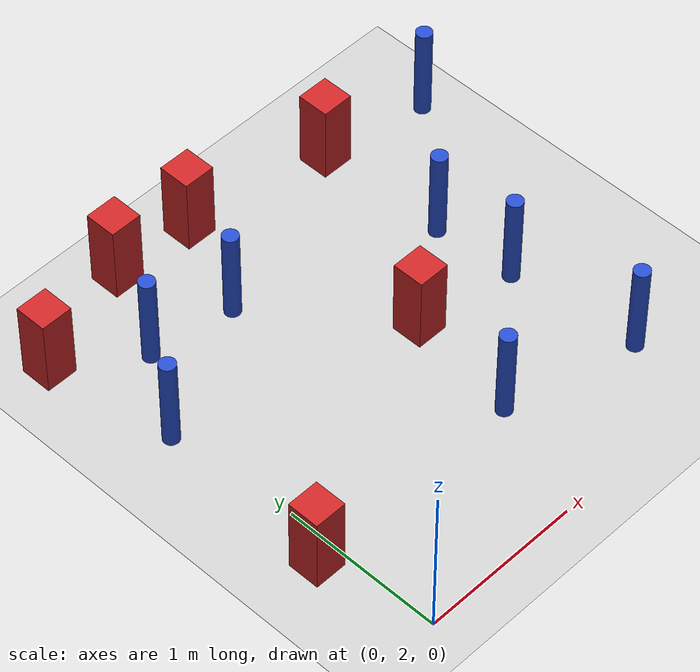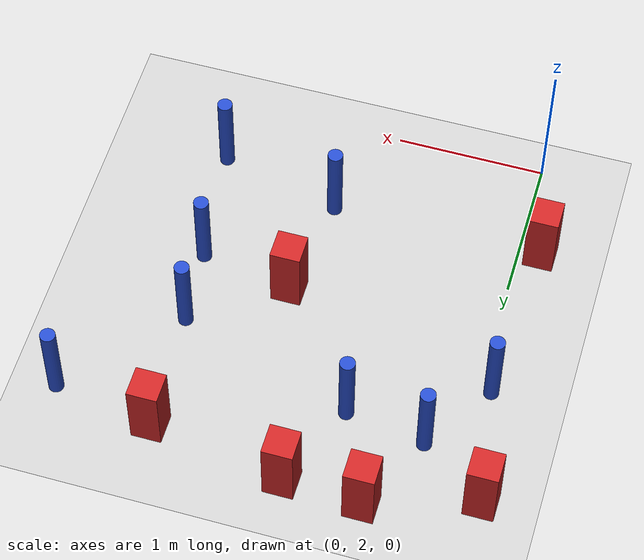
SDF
<sdf version="1.6">
 <world name="default">
  <model name="ground_plane">
   <static>1</static>
   <link name="link">
    <collision name="collision">
     <geometry><plane><normal>0 0 1</normal><size>100 100</size></plane></geometry>
     <surface><friction><ode><mu>100</mu><mu2>50</mu2></ode></friction></surface>
    </collision>
    <visual name="visual">
     <cast_shadows>0</cast_shadows>
     <geometry><plane><normal>0 0 1</normal><size>100 100</size></plane></geometry>
     <material>
      <ambient>1.0 1.0 1.0 1.0</ambient>
      <diffuse>0.8 0.8 0.8 1.0</diffuse>
      <specular>0.01 0.01 0.01 1.000000</specular>
     </material>
    </visual>
   </link>
  </model>
  <model name="pole_obstacle7">
   <static>true</static>
   <pose>1.96230142851 3.81808928893 -2.66029137441e-07 -5.69430205637e-07 6.84129966555e-07 -8.6834937083e-08</pose>
   <link name="link">
    <pose>0 0 0.3 0 -0 0</pose>
    <inertial>
     <mass>1</mass>
     <inertia><ixx>0.145833</ixx><ixy>0</ixy><ixz>0</ixz><iyy>0.145833</iyy><iyz>0</iyz><izz>0.125</izz></inertia>
    </inertial>
    <collision name="collision">
     <geometry><cylinder><radius>0.05</radius><length>.6</length></cylinder></geometry>
    </collision>
    <visual name="visual">
     <geometry><cylinder><radius>0.05</radius><length>.6</length></cylinder></geometry>
     <material>
      <script><name>Gazebo/Blue</name><uri>file://media/materials/scripts/gazebo.material</uri></script>
     </material>
    </visual>
   </link>
  </model>
  <model name="square_post_obstacle28">
   <static>true</static>
   <pose>1.92408122065 4.64367417338 -7.80171244635e-07 7.17449752808e-06 -5.6639232126e-07 2.2715510512e-05</pose>
   <link name="link">
    <pose>0 0 0.25 0 -0 0</pose>
    <inertial>
     <mass>100</mass>
     <inertia>
      <ixx>0.166667</ixx>
      <ixy>0</ixy>
      <ixz>0</ixz>
      <iyy>0.166667</iyy>
      <iyz>0</iyz>
      <izz>0.166667</izz>
     </inertia>
    </inertial>
    <collision name="collision"><geometry><box><size>.2 .2 .5</size></box></geometry></collision>
    <visual name="visual">
     <geometry><box><size>.2 .2 .5</size></box></geometry>
     <material>
      <script><name>Gazebo/Red</name><uri>file://media/materials/scripts/gazebo.material</uri></script>
     </material>
    </visual>
   </link>
  </model>
  <model name="pole_obstacle43">
   <static>true</static>
   <pose>-0.0823583343224 3.80414017 -2.66029137441e-07 -5.6943020563e-07 6.84129966563e-07 -8.68349370787e-08</pose>
   <link name="link">
    <pose>0 0 0.3 0 -0 0</pose>
    <inertial>
     <mass>1</mass>
     <inertia><ixx>0.145833</ixx><ixy>0</ixy><ixz>0</ixz><iyy>0.145833</iyy><iyz>0</iyz><izz>0.125</izz></inertia>
    </inertial>
    <collision name="collision">
     <geometry><cylinder><radius>0.05</radius><length>.6</length></cylinder></geometry>
    </collision>
    <visual name="visual">
     <geometry><cylinder><radius>0.05</radius><length>.6</length></cylinder></geometry>
     <material>
      <script><name>Gazebo/Blue</name><uri>file://media/materials/scripts/gazebo.material</uri></script>
     </material>
    </visual>
   </link>
  </model>
  <model name="pole_obstacle57">
   <static>true</static>
   <pose>1.27595280279 2.68957354085 -2.66029137441e-07 -5.69430205634e-07 6.84129966558e-07 -8.68349370806e-08</pose>
   <link name="link">
    <pose>0 0 0.3 0 -0 0</pose>
    <inertial>
     <mass>1</mass>
     <inertia><ixx>0.145833</ixx><ixy>0</ixy><ixz>0</ixz><iyy>0.145833</iyy><iyz>0</iyz><izz>0.125</izz></inertia>
    </inertial>
    <collision name="collision">
     <geometry><cylinder><radius>0.05</radius><length>.6</length></cylinder></geometry>
    </collision>
    <visual name="visual">
     <geometry><cylinder><radius>0.05</radius><length>.6</length></cylinder></geometry>
     <material>
      <script><name>Gazebo/Blue</name><uri>file://media/materials/scripts/gazebo.material</uri></script>
     </material>
    </visual>
   </link>
  </model>
  <model name="square_post_obstacle45">
   <static>true</static>
   <pose>1.01305739748 4.79835674874 -7.80171244635e-07 7.17449752808e-06 -5.6639232126e-07 2.2715510512e-05</pose>
   <link name="link">
    <pose>0 0 0.25 0 -0 0</pose>
    <inertial>
     <mass>100</mass>
     <inertia>
      <ixx>0.166667</ixx>
      <ixy>0</ixy>
      <ixz>0</ixz>
      <iyy>0.166667</iyy>
      <iyz>0</iyz>
      <izz>0.166667</izz>
     </inertia>
    </inertial>
    <collision name="collision"><geometry><box><size>.2 .2 .5</size></box></geometry></collision>
    <visual name="visual">
     <geometry><box><size>.2 .2 .5</size></box></geometry>
     <material>
      <script><name>Gazebo/Red</name><uri>file://media/materials/scripts/gazebo.material</uri></script>
     </material>
    </visual>
   </link>
  </model>
  <model name="square_post_obstacle53">
   <static>true</static>
   <pose>-0.142103559039 2.67700988703 -7.80171244635e-07 7.17449752808e-06 -5.6639232126e-07 2.2715510512e-05</pose>
   <link name="link">
    <pose>0 0 0.25 0 -0 0</pose>
    <inertial>
     <mass>100</mass>
     <inertia>
      <ixx>0.166667</ixx>
      <ixy>0</ixy>
      <ixz>0</ixz>
      <iyy>0.166667</iyy>
      <iyz>0</iyz>
      <izz>0.166667</izz>
     </inertia>
    </inertial>
    <collision name="collision"><geometry><box><size>.2 .2 .5</size></box></geometry></collision>
    <visual name="visual">
     <geometry><box><size>.2 .2 .5</size></box></geometry>
     <material>
      <script><name>Gazebo/Red</name><uri>file://media/materials/scripts/gazebo.material</uri></script>
     </material>
    </visual>
   </link>
  </model>
  <model name="pole_obstacle83">
   <static>true</static>
   <pose>2.59869494379 4.5320456758 -2.66029137441e-07 -5.69430205635e-07 6.84129966557e-07 -8.68349370832e-08</pose>
   <link name="link">
    <pose>0 0 0.3 0 -0 0</pose>
    <inertial>
     <mass>1</mass>
     <inertia><ixx>0.145833</ixx><ixy>0</ixy><ixz>0</ixz><iyy>0.145833</iyy><iyz>0</iyz><izz>0.125</izz></inertia>
    </inertial>
    <collision name="collision">
     <geometry><cylinder><radius>0.05</radius><length>.6</length></cylinder></geometry>
    </collision>
    <visual name="visual">
     <geometry><cylinder><radius>0.05</radius><length>.6</length></cylinder></geometry>
     <material>
      <script><name>Gazebo/Blue</name><uri>file://media/materials/scripts/gazebo.material</uri></script>
     </material>
    </visual>
   </link>
  </model>
  <model name="pole_obstacle117">
   <static>true</static>
   <pose>2.09569332115 2.49116753536 -2.66029137441e-07 -5.69430205643e-07 6.84129966548e-07 -8.68349370903e-08</pose>
   <link name="link">
    <pose>0 0 0.3 0 -0 0</pose>
    <inertial>
     <mass>1</mass>
     <inertia><ixx>0.145833</ixx><ixy>0</ixy><ixz>0</ixz><iyy>0.145833</iyy><iyz>0</iyz><izz>0.125</izz></inertia>
    </inertial>
    <collision name="collision">
     <geometry><cylinder><radius>0.05</radius><length>.6</length></cylinder></geometry>
    </collision>
    <visual name="visual">
     <geometry><cylinder><radius>0.05</radius><length>.6</length></cylinder></geometry>
     <material>
      <script><name>Gazebo/Blue</name><uri>file://media/materials/scripts/gazebo.material</uri></script>
     </material>
    </visual>
   </link>
  </model>
  <model name="pole_obstacle165">
   <static>true</static>
   <pose>0.233436097265 4.28815782311 -2.66029137441e-07 -5.69430205628e-07 6.84129966565e-07 -8.68349370765e-08</pose>
   <link name="link">
    <pose>0 0 0.3 0 -0 0</pose>
    <inertial>
     <mass>1</mass>
     <inertia><ixx>0.145833</ixx><ixy>0</ixy><ixz>0</ixz><iyy>0.145833</iyy><iyz>0</iyz><izz>0.125</izz></inertia>
    </inertial>
    <collision name="collision">
     <geometry><cylinder><radius>0.05</radius><length>.6</length></cylinder></geometry>
    </collision>
    <visual name="visual">
     <geometry><cylinder><radius>0.05</radius><length>.6</length></cylinder></geometry>
     <material>
      <script><name>Gazebo/Blue</name><uri>file://media/materials/scripts/gazebo.material</uri></script>
     </material>
    </visual>
   </link>
  </model>
  <model name="square_post_obstacle169">
   <static>true</static>
   <pose>1.38005438468 3.40444852442 -7.80171244635e-07 7.17449752808e-06 -5.6639232126e-07 2.2715510512e-05</pose>
   <link name="link">
    <pose>0 0 0.25 0 -0 0</pose>
    <inertial>
     <mass>100</mass>
     <inertia>
      <ixx>0.166667</ixx>
      <ixy>0</ixy>
      <ixz>0</ixz>
      <iyy>0.166667</iyy>
      <iyz>0</iyz>
      <izz>0.166667</izz>
     </inertia>
    </inertial>
    <collision name="collision"><geometry><box><size>.2 .2 .5</size></box></geometry></collision>
    <visual name="visual">
     <geometry><box><size>.2 .2 .5</size></box></geometry>
     <material>
      <script><name>Gazebo/Red</name><uri>file://media/materials/scripts/gazebo.material</uri></script>
     </material>
    </visual>
   </link>
  </model>
  <model name="pole_obstacle170">
   <static>true</static>
   <pose>0.765131276808 4.20770242626 -2.66029137441e-07 -5.69430205631e-07 6.84129966561e-07 -8.68349370784e-08</pose>
   <link name="link">
    <pose>0 0 0.3 0 -0 0</pose>
    <inertial>
     <mass>1</mass>
     <inertia><ixx>0.145833</ixx><ixy>0</ixy><ixz>0</ixz><iyy>0.145833</iyy><iyz>0</iyz><izz>0.125</izz></inertia>
    </inertial>
    <collision name="collision">
     <geometry><cylinder><radius>0.05</radius><length>.6</length></cylinder></geometry>
    </collision>
    <visual name="visual">
     <geometry><cylinder><radius>0.05</radius><length>.6</length></cylinder></geometry>
     <material>
      <script><name>Gazebo/Blue</name><uri>file://media/materials/scripts/gazebo.material</uri></script>
     </material>
    </visual>
   </link>
  </model>
  <model name="square_post_obstacle179">
   <static>true</static>
   <pose>-0.212685796957 4.60070642719 -7.80171244635e-07 7.17449752808e-06 -5.6639232126e-07 2.2715510512e-05</pose>
   <link name="link">
    <pose>0 0 0.25 0 -0 0</pose>
    <inertial>
     <mass>100</mass>
     <inertia>
      <ixx>0.166667</ixx>
      <ixy>0</ixy>
      <ixz>0</ixz>
      <iyy>0.166667</iyy>
      <iyz>0</iyz>
      <izz>0.166667</izz>
     </inertia>
    </inertial>
    <collision name="collision"><geometry><box><size>.2 .2 .5</size></box></geometry></collision>
    <visual name="visual">
     <geometry><box><size>.2 .2 .5</size></box></geometry>
     <material>
      <script><name>Gazebo/Red</name><uri>file://media/materials/scripts/gazebo.material</uri></script>
     </material>
    </visual>
   </link>
  </model>
  <model name="pole_obstacle192">
   <static>true</static>
   <pose>2.0004956605 3.30228815203 -2.66029137441e-07 -5.69430205647e-07 6.84129966544e-07 -8.68349370923e-08</pose>
   <link name="link">
    <pose>0 0 0.3 0 -0 0</pose>
    <inertial>
     <mass>1</mass>
     <inertia><ixx>0.145833</ixx><ixy>0</ixy><ixz>0</ixz><iyy>0.145833</iyy><iyz>0</iyz><izz>0.125</izz></inertia>
    </inertial>
    <collision name="collision">
     <geometry><cylinder><radius>0.05</radius><length>.6</length></cylinder></geometry>
    </collision>
    <visual name="visual">
     <geometry><cylinder><radius>0.05</radius><length>.6</length></cylinder></geometry>
     <material>
      <script><name>Gazebo/Blue</name><uri>file://media/materials/scripts/gazebo.material</uri></script>
     </material>
    </visual>
   </link>
  </model>
  <model name="square_post_obstacle216">
   <static>true</static>
   <pose>0.494394041012 4.82370997169 -7.80171244635e-07 7.17449752808e-06 -5.6639232126e-07 2.2715510512e-05</pose>
   <link name="link">
    <pose>0 0 0.25 0 -0 0</pose>
    <inertial>
     <mass>100</mass>
     <inertia>
      <ixx>0.166667</ixx>
      <ixy>0</ixy>
      <ixz>0</ixz>
      <iyy>0.166667</iyy>
      <iyz>0</iyz>
      <izz>0.166667</izz>
     </inertia>
    </inertial>
    <collision name="collision"><geometry><box><size>.2 .2 .5</size></box></geometry></collision>
    <visual name="visual">
     <geometry><box><size>.2 .2 .5</size></box></geometry>
     <material>
      <script><name>Gazebo/Red</name><uri>file://media/materials/scripts/gazebo.material</uri></script>
     </material>
    </visual>
   </link>
  </model>
 </world>
</sdf>
